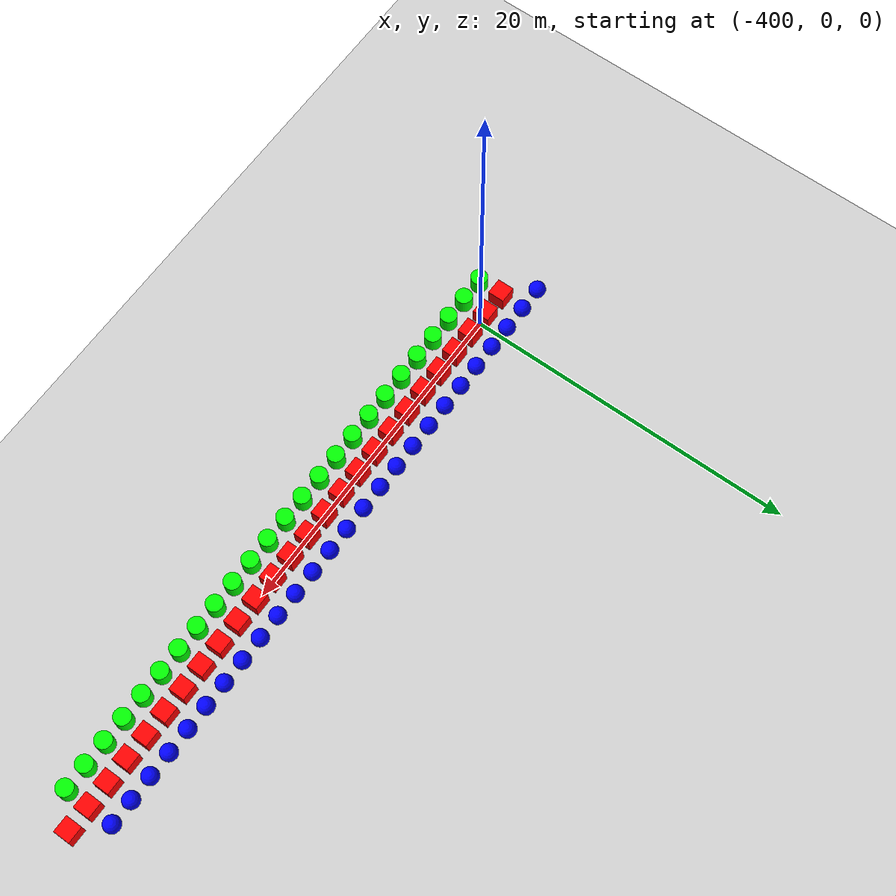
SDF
<sdf version="1.6">
 <world name="shapes">
  <model name="ground_plane">
   <static>true</static>
   <link name="link">
    <collision name="collision">
     <geometry><plane><normal>0 0 1</normal><size>100 100</size></plane></geometry>
    </collision>
    <visual name="visual">
     <geometry><plane><normal>0 0 1</normal><size>100 100</size></plane></geometry>
     <material>
      <ambient>0.8 0.8 0.8 1</ambient>
      <diffuse>0.8 0.8 0.8 1</diffuse>
      <specular>0.8 0.8 0.8 1</specular>
     </material>
    </visual>
   </link>
  </model>
  <model name="sphere_231">
   <static>false</static>
   <pose>-403.5 1.5 0.5 0 0 0</pose>
   <link name="sphere_link">
    <inertial>
     <inertia><ixx>3</ixx><ixy>0</ixy><ixz>0</ixz><iyy>3</iyy><iyz>0</iyz><izz>3</izz></inertia>
     <mass>3.0</mass>
    </inertial>
    <collision name="sphere_collision"><geometry><sphere><radius>0.5</radius></sphere></geometry></collision>
    <visual name="sphere_visual">
     <geometry><sphere><radius>0.5</radius></sphere></geometry>
     <material><ambient>0 0 1 1</ambient><diffuse>0 0 1 1</diffuse><specular>0 0 1 1</specular></material>
    </visual>
   </link>
  </model>
  <model name="box_232">
   <static>false</static>
   <pose>-402.0 0 0.5 0 0 0</pose>
   <link name="box_link">
    <inertial>
     <inertia><ixx>1</ixx><ixy>0</ixy><ixz>0</ixz><iyy>1</iyy><iyz>0</iyz><izz>1</izz></inertia>
     <mass>1.0</mass>
    </inertial>
    <collision name="box_collision"><geometry><box><size>1 1 1</size></box></geometry></collision>
    <visual name="box_visual">
     <geometry><box><size>1 1 1</size></box></geometry>
     <material><ambient>1 0 0 1</ambient><diffuse>1 0 0 1</diffuse><specular>1 0 0 1</specular></material>
    </visual>
   </link>
  </model>
  <model name="cylinder_232">
   <static>false</static>
   <pose>-402.0 -1.5 0.5 0 0 0</pose>
   <link name="cylinder_link">
    <inertial>
     <inertia><ixx>2</ixx><ixy>0</ixy><ixz>0</ixz><iyy>2</iyy><iyz>0</iyz><izz>2</izz></inertia>
     <mass>2.0</mass>
    </inertial>
    <collision name="cylinder_collision">
     <geometry><cylinder><radius>0.5</radius><length>1.0</length></cylinder></geometry>
    </collision>
    <visual name="cylinder_visual">
     <geometry><cylinder><radius>0.5</radius><length>1.0</length></cylinder></geometry>
     <material><ambient>0 1 0 1</ambient><diffuse>0 1 0 1</diffuse><specular>0 1 0 1</specular></material>
    </visual>
   </link>
  </model>
  <model name="sphere_232">
   <static>false</static>
   <pose>-402.0 1.5 0.5 0 0 0</pose>
   <link name="sphere_link">
    <inertial>
     <inertia><ixx>3</ixx><ixy>0</ixy><ixz>0</ixz><iyy>3</iyy><iyz>0</iyz><izz>3</izz></inertia>
     <mass>3.0</mass>
    </inertial>
    <collision name="sphere_collision"><geometry><sphere><radius>0.5</radius></sphere></geometry></collision>
    <visual name="sphere_visual">
     <geometry><sphere><radius>0.5</radius></sphere></geometry>
     <material><ambient>0 0 1 1</ambient><diffuse>0 0 1 1</diffuse><specular>0 0 1 1</specular></material>
    </visual>
   </link>
  </model>
  <model name="box_233">
   <static>false</static>
   <pose>-400.5 0 0.5 0 0 0</pose>
   <link name="box_link">
    <inertial>
     <inertia><ixx>1</ixx><ixy>0</ixy><ixz>0</ixz><iyy>1</iyy><iyz>0</iyz><izz>1</izz></inertia>
     <mass>1.0</mass>
    </inertial>
    <collision name="box_collision"><geometry><box><size>1 1 1</size></box></geometry></collision>
    <visual name="box_visual">
     <geometry><box><size>1 1 1</size></box></geometry>
     <material><ambient>1 0 0 1</ambient><diffuse>1 0 0 1</diffuse><specular>1 0 0 1</specular></material>
    </visual>
   </link>
  </model>
  <model name="cylinder_233">
   <static>false</static>
   <pose>-400.5 -1.5 0.5 0 0 0</pose>
   <link name="cylinder_link">
    <inertial>
     <inertia><ixx>2</ixx><ixy>0</ixy><ixz>0</ixz><iyy>2</iyy><iyz>0</iyz><izz>2</izz></inertia>
     <mass>2.0</mass>
    </inertial>
    <collision name="cylinder_collision">
     <geometry><cylinder><radius>0.5</radius><length>1.0</length></cylinder></geometry>
    </collision>
    <visual name="cylinder_visual">
     <geometry><cylinder><radius>0.5</radius><length>1.0</length></cylinder></geometry>
     <material><ambient>0 1 0 1</ambient><diffuse>0 1 0 1</diffuse><specular>0 1 0 1</specular></material>
    </visual>
   </link>
  </model>
  <model name="sphere_233">
   <static>false</static>
   <pose>-400.5 1.5 0.5 0 0 0</pose>
   <link name="sphere_link">
    <inertial>
     <inertia><ixx>3</ixx><ixy>0</ixy><ixz>0</ixz><iyy>3</iyy><iyz>0</iyz><izz>3</izz></inertia>
     <mass>3.0</mass>
    </inertial>
    <collision name="sphere_collision"><geometry><sphere><radius>0.5</radius></sphere></geometry></collision>
    <visual name="sphere_visual">
     <geometry><sphere><radius>0.5</radius></sphere></geometry>
     <material><ambient>0 0 1 1</ambient><diffuse>0 0 1 1</diffuse><specular>0 0 1 1</specular></material>
    </visual>
   </link>
  </model>
  <model name="box_234">
   <static>false</static>
   <pose>-399.0 0 0.5 0 0 0</pose>
   <link name="box_link">
    <inertial>
     <inertia><ixx>1</ixx><ixy>0</ixy><ixz>0</ixz><iyy>1</iyy><iyz>0</iyz><izz>1</izz></inertia>
     <mass>1.0</mass>
    </inertial>
    <collision name="box_collision"><geometry><box><size>1 1 1</size></box></geometry></collision>
    <visual name="box_visual">
     <geometry><box><size>1 1 1</size></box></geometry>
     <material><ambient>1 0 0 1</ambient><diffuse>1 0 0 1</diffuse><specular>1 0 0 1</specular></material>
    </visual>
   </link>
  </model>
  <model name="cylinder_234">
   <static>false</static>
   <pose>-399.0 -1.5 0.5 0 0 0</pose>
   <link name="cylinder_link">
    <inertial>
     <inertia><ixx>2</ixx><ixy>0</ixy><ixz>0</ixz><iyy>2</iyy><iyz>0</iyz><izz>2</izz></inertia>
     <mass>2.0</mass>
    </inertial>
    <collision name="cylinder_collision">
     <geometry><cylinder><radius>0.5</radius><length>1.0</length></cylinder></geometry>
    </collision>
    <visual name="cylinder_visual">
     <geometry><cylinder><radius>0.5</radius><length>1.0</length></cylinder></geometry>
     <material><ambient>0 1 0 1</ambient><diffuse>0 1 0 1</diffuse><specular>0 1 0 1</specular></material>
    </visual>
   </link>
  </model>
  <model name="sphere_234">
   <static>false</static>
   <pose>-399.0 1.5 0.5 0 0 0</pose>
   <link name="sphere_link">
    <inertial>
     <inertia><ixx>3</ixx><ixy>0</ixy><ixz>0</ixz><iyy>3</iyy><iyz>0</iyz><izz>3</izz></inertia>
     <mass>3.0</mass>
    </inertial>
    <collision name="sphere_collision"><geometry><sphere><radius>0.5</radius></sphere></geometry></collision>
    <visual name="sphere_visual">
     <geometry><sphere><radius>0.5</radius></sphere></geometry>
     <material><ambient>0 0 1 1</ambient><diffuse>0 0 1 1</diffuse><specular>0 0 1 1</specular></material>
    </visual>
   </link>
  </model>
  <model name="box_235">
   <static>false</static>
   <pose>-397.5 0 0.5 0 0 0</pose>
   <link name="box_link">
    <inertial>
     <inertia><ixx>1</ixx><ixy>0</ixy><ixz>0</ixz><iyy>1</iyy><iyz>0</iyz><izz>1</izz></inertia>
     <mass>1.0</mass>
    </inertial>
    <collision name="box_collision"><geometry><box><size>1 1 1</size></box></geometry></collision>
    <visual name="box_visual">
     <geometry><box><size>1 1 1</size></box></geometry>
     <material><ambient>1 0 0 1</ambient><diffuse>1 0 0 1</diffuse><specular>1 0 0 1</specular></material>
    </visual>
   </link>
  </model>
  <model name="cylinder_235">
   <static>false</static>
   <pose>-397.5 -1.5 0.5 0 0 0</pose>
   <link name="cylinder_link">
    <inertial>
     <inertia><ixx>2</ixx><ixy>0</ixy><ixz>0</ixz><iyy>2</iyy><iyz>0</iyz><izz>2</izz></inertia>
     <mass>2.0</mass>
    </inertial>
    <collision name="cylinder_collision">
     <geometry><cylinder><radius>0.5</radius><length>1.0</length></cylinder></geometry>
    </collision>
    <visual name="cylinder_visual">
     <geometry><cylinder><radius>0.5</radius><length>1.0</length></cylinder></geometry>
     <material><ambient>0 1 0 1</ambient><diffuse>0 1 0 1</diffuse><specular>0 1 0 1</specular></material>
    </visual>
   </link>
  </model>
  <model name="sphere_235">
   <static>false</static>
   <pose>-397.5 1.5 0.5 0 0 0</pose>
   <link name="sphere_link">
    <inertial>
     <inertia><ixx>3</ixx><ixy>0</ixy><ixz>0</ixz><iyy>3</iyy><iyz>0</iyz><izz>3</izz></inertia>
     <mass>3.0</mass>
    </inertial>
    <collision name="sphere_collision"><geometry><sphere><radius>0.5</radius></sphere></geometry></collision>
    <visual name="sphere_visual">
     <geometry><sphere><radius>0.5</radius></sphere></geometry>
     <material><ambient>0 0 1 1</ambient><diffuse>0 0 1 1</diffuse><specular>0 0 1 1</specular></material>
    </visual>
   </link>
  </model>
  <model name="box_236">
   <static>false</static>
   <pose>-396.0 0 0.5 0 0 0</pose>
   <link name="box_link">
    <inertial>
     <inertia><ixx>1</ixx><ixy>0</ixy><ixz>0</ixz><iyy>1</iyy><iyz>0</iyz><izz>1</izz></inertia>
     <mass>1.0</mass>
    </inertial>
    <collision name="box_collision"><geometry><box><size>1 1 1</size></box></geometry></collision>
    <visual name="box_visual">
     <geometry><box><size>1 1 1</size></box></geometry>
     <material><ambient>1 0 0 1</ambient><diffuse>1 0 0 1</diffuse><specular>1 0 0 1</specular></material>
    </visual>
   </link>
  </model>
  <model name="cylinder_236">
   <static>false</static>
   <pose>-396.0 -1.5 0.5 0 0 0</pose>
   <link name="cylinder_link">
    <inertial>
     <inertia><ixx>2</ixx><ixy>0</ixy><ixz>0</ixz><iyy>2</iyy><iyz>0</iyz><izz>2</izz></inertia>
     <mass>2.0</mass>
    </inertial>
    <collision name="cylinder_collision">
     <geometry><cylinder><radius>0.5</radius><length>1.0</length></cylinder></geometry>
    </collision>
    <visual name="cylinder_visual">
     <geometry><cylinder><radius>0.5</radius><length>1.0</length></cylinder></geometry>
     <material><ambient>0 1 0 1</ambient><diffuse>0 1 0 1</diffuse><specular>0 1 0 1</specular></material>
    </visual>
   </link>
  </model>
  <model name="sphere_236">
   <static>false</static>
   <pose>-396.0 1.5 0.5 0 0 0</pose>
   <link name="sphere_link">
    <inertial>
     <inertia><ixx>3</ixx><ixy>0</ixy><ixz>0</ixz><iyy>3</iyy><iyz>0</iyz><izz>3</izz></inertia>
     <mass>3.0</mass>
    </inertial>
    <collision name="sphere_collision"><geometry><sphere><radius>0.5</radius></sphere></geometry></collision>
    <visual name="sphere_visual">
     <geometry><sphere><radius>0.5</radius></sphere></geometry>
     <material><ambient>0 0 1 1</ambient><diffuse>0 0 1 1</diffuse><specular>0 0 1 1</specular></material>
    </visual>
   </link>
  </model>
  <model name="box_237">
   <static>false</static>
   <pose>-394.5 0 0.5 0 0 0</pose>
   <link name="box_link">
    <inertial>
     <inertia><ixx>1</ixx><ixy>0</ixy><ixz>0</ixz><iyy>1</iyy><iyz>0</iyz><izz>1</izz></inertia>
     <mass>1.0</mass>
    </inertial>
    <collision name="box_collision"><geometry><box><size>1 1 1</size></box></geometry></collision>
    <visual name="box_visual">
     <geometry><box><size>1 1 1</size></box></geometry>
     <material><ambient>1 0 0 1</ambient><diffuse>1 0 0 1</diffuse><specular>1 0 0 1</specular></material>
    </visual>
   </link>
  </model>
  <model name="cylinder_237">
   <static>false</static>
   <pose>-394.5 -1.5 0.5 0 0 0</pose>
   <link name="cylinder_link">
    <inertial>
     <inertia><ixx>2</ixx><ixy>0</ixy><ixz>0</ixz><iyy>2</iyy><iyz>0</iyz><izz>2</izz></inertia>
     <mass>2.0</mass>
    </inertial>
    <collision name="cylinder_collision">
     <geometry><cylinder><radius>0.5</radius><length>1.0</length></cylinder></geometry>
    </collision>
    <visual name="cylinder_visual">
     <geometry><cylinder><radius>0.5</radius><length>1.0</length></cylinder></geometry>
     <material><ambient>0 1 0 1</ambient><diffuse>0 1 0 1</diffuse><specular>0 1 0 1</specular></material>
    </visual>
   </link>
  </model>
  <model name="sphere_237">
   <static>false</static>
   <pose>-394.5 1.5 0.5 0 0 0</pose>
   <link name="sphere_link">
    <inertial>
     <inertia><ixx>3</ixx><ixy>0</ixy><ixz>0</ixz><iyy>3</iyy><iyz>0</iyz><izz>3</izz></inertia>
     <mass>3.0</mass>
    </inertial>
    <collision name="sphere_collision"><geometry><sphere><radius>0.5</radius></sphere></geometry></collision>
    <visual name="sphere_visual">
     <geometry><sphere><radius>0.5</radius></sphere></geometry>
     <material><ambient>0 0 1 1</ambient><diffuse>0 0 1 1</diffuse><specular>0 0 1 1</specular></material>
    </visual>
   </link>
  </model>
  <model name="box_238">
   <static>false</static>
   <pose>-393.0 0 0.5 0 0 0</pose>
   <link name="box_link">
    <inertial>
     <inertia><ixx>1</ixx><ixy>0</ixy><ixz>0</ixz><iyy>1</iyy><iyz>0</iyz><izz>1</izz></inertia>
     <mass>1.0</mass>
    </inertial>
    <collision name="box_collision"><geometry><box><size>1 1 1</size></box></geometry></collision>
    <visual name="box_visual">
     <geometry><box><size>1 1 1</size></box></geometry>
     <material><ambient>1 0 0 1</ambient><diffuse>1 0 0 1</diffuse><specular>1 0 0 1</specular></material>
    </visual>
   </link>
  </model>
  <model name="cylinder_238">
   <static>false</static>
   <pose>-393.0 -1.5 0.5 0 0 0</pose>
   <link name="cylinder_link">
    <inertial>
     <inertia><ixx>2</ixx><ixy>0</ixy><ixz>0</ixz><iyy>2</iyy><iyz>0</iyz><izz>2</izz></inertia>
     <mass>2.0</mass>
    </inertial>
    <collision name="cylinder_collision">
     <geometry><cylinder><radius>0.5</radius><length>1.0</length></cylinder></geometry>
    </collision>
    <visual name="cylinder_visual">
     <geometry><cylinder><radius>0.5</radius><length>1.0</length></cylinder></geometry>
     <material><ambient>0 1 0 1</ambient><diffuse>0 1 0 1</diffuse><specular>0 1 0 1</specular></material>
    </visual>
   </link>
  </model>
  <model name="sphere_238">
   <static>false</static>
   <pose>-393.0 1.5 0.5 0 0 0</pose>
   <link name="sphere_link">
    <inertial>
     <inertia><ixx>3</ixx><ixy>0</ixy><ixz>0</ixz><iyy>3</iyy><iyz>0</iyz><izz>3</izz></inertia>
     <mass>3.0</mass>
    </inertial>
    <collision name="sphere_collision"><geometry><sphere><radius>0.5</radius></sphere></geometry></collision>
    <visual name="sphere_visual">
     <geometry><sphere><radius>0.5</radius></sphere></geometry>
     <material><ambient>0 0 1 1</ambient><diffuse>0 0 1 1</diffuse><specular>0 0 1 1</specular></material>
    </visual>
   </link>
  </model>
  <model name="box_239">
   <static>false</static>
   <pose>-391.5 0 0.5 0 0 0</pose>
   <link name="box_link">
    <inertial>
     <inertia><ixx>1</ixx><ixy>0</ixy><ixz>0</ixz><iyy>1</iyy><iyz>0</iyz><izz>1</izz></inertia>
     <mass>1.0</mass>
    </inertial>
    <collision name="box_collision"><geometry><box><size>1 1 1</size></box></geometry></collision>
    <visual name="box_visual">
     <geometry><box><size>1 1 1</size></box></geometry>
     <material><ambient>1 0 0 1</ambient><diffuse>1 0 0 1</diffuse><specular>1 0 0 1</specular></material>
    </visual>
   </link>
  </model>
  <model name="cylinder_239">
   <static>false</static>
   <pose>-391.5 -1.5 0.5 0 0 0</pose>
   <link name="cylinder_link">
    <inertial>
     <inertia><ixx>2</ixx><ixy>0</ixy><ixz>0</ixz><iyy>2</iyy><iyz>0</iyz><izz>2</izz></inertia>
     <mass>2.0</mass>
    </inertial>
    <collision name="cylinder_collision">
     <geometry><cylinder><radius>0.5</radius><length>1.0</length></cylinder></geometry>
    </collision>
    <visual name="cylinder_visual">
     <geometry><cylinder><radius>0.5</radius><length>1.0</length></cylinder></geometry>
     <material><ambient>0 1 0 1</ambient><diffuse>0 1 0 1</diffuse><specular>0 1 0 1</specular></material>
    </visual>
   </link>
  </model>
  <model name="sphere_239">
   <static>false</static>
   <pose>-391.5 1.5 0.5 0 0 0</pose>
   <link name="sphere_link">
    <inertial>
     <inertia><ixx>3</ixx><ixy>0</ixy><ixz>0</ixz><iyy>3</iyy><iyz>0</iyz><izz>3</izz></inertia>
     <mass>3.0</mass>
    </inertial>
    <collision name="sphere_collision"><geometry><sphere><radius>0.5</radius></sphere></geometry></collision>
    <visual name="sphere_visual">
     <geometry><sphere><radius>0.5</radius></sphere></geometry>
     <material><ambient>0 0 1 1</ambient><diffuse>0 0 1 1</diffuse><specular>0 0 1 1</specular></material>
    </visual>
   </link>
  </model>
  <model name="box_240">
   <static>false</static>
   <pose>-390.0 0 0.5 0 0 0</pose>
   <link name="box_link">
    <inertial>
     <inertia><ixx>1</ixx><ixy>0</ixy><ixz>0</ixz><iyy>1</iyy><iyz>0</iyz><izz>1</izz></inertia>
     <mass>1.0</mass>
    </inertial>
    <collision name="box_collision"><geometry><box><size>1 1 1</size></box></geometry></collision>
    <visual name="box_visual">
     <geometry><box><size>1 1 1</size></box></geometry>
     <material><ambient>1 0 0 1</ambient><diffuse>1 0 0 1</diffuse><specular>1 0 0 1</specular></material>
    </visual>
   </link>
  </model>
  <model name="cylinder_240">
   <static>false</static>
   <pose>-390.0 -1.5 0.5 0 0 0</pose>
   <link name="cylinder_link">
    <inertial>
     <inertia><ixx>2</ixx><ixy>0</ixy><ixz>0</ixz><iyy>2</iyy><iyz>0</iyz><izz>2</izz></inertia>
     <mass>2.0</mass>
    </inertial>
    <collision name="cylinder_collision">
     <geometry><cylinder><radius>0.5</radius><length>1.0</length></cylinder></geometry>
    </collision>
    <visual name="cylinder_visual">
     <geometry><cylinder><radius>0.5</radius><length>1.0</length></cylinder></geometry>
     <material><ambient>0 1 0 1</ambient><diffuse>0 1 0 1</diffuse><specular>0 1 0 1</specular></material>
    </visual>
   </link>
  </model>
  <model name="sphere_240">
   <static>false</static>
   <pose>-390.0 1.5 0.5 0 0 0</pose>
   <link name="sphere_link">
    <inertial>
     <inertia><ixx>3</ixx><ixy>0</ixy><ixz>0</ixz><iyy>3</iyy><iyz>0</iyz><izz>3</izz></inertia>
     <mass>3.0</mass>
    </inertial>
    <collision name="sphere_collision"><geometry><sphere><radius>0.5</radius></sphere></geometry></collision>
    <visual name="sphere_visual">
     <geometry><sphere><radius>0.5</radius></sphere></geometry>
     <material><ambient>0 0 1 1</ambient><diffuse>0 0 1 1</diffuse><specular>0 0 1 1</specular></material>
    </visual>
   </link>
  </model>
  <model name="box_241">
   <static>false</static>
   <pose>-388.5 0 0.5 0 0 0</pose>
   <link name="box_link">
    <inertial>
     <inertia><ixx>1</ixx><ixy>0</ixy><ixz>0</ixz><iyy>1</iyy><iyz>0</iyz><izz>1</izz></inertia>
     <mass>1.0</mass>
    </inertial>
    <collision name="box_collision"><geometry><box><size>1 1 1</size></box></geometry></collision>
    <visual name="box_visual">
     <geometry><box><size>1 1 1</size></box></geometry>
     <material><ambient>1 0 0 1</ambient><diffuse>1 0 0 1</diffuse><specular>1 0 0 1</specular></material>
    </visual>
   </link>
  </model>
  <model name="cylinder_241">
   <static>false</static>
   <pose>-388.5 -1.5 0.5 0 0 0</pose>
   <link name="cylinder_link">
    <inertial>
     <inertia><ixx>2</ixx><ixy>0</ixy><ixz>0</ixz><iyy>2</iyy><iyz>0</iyz><izz>2</izz></inertia>
     <mass>2.0</mass>
    </inertial>
    <collision name="cylinder_collision">
     <geometry><cylinder><radius>0.5</radius><length>1.0</length></cylinder></geometry>
    </collision>
    <visual name="cylinder_visual">
     <geometry><cylinder><radius>0.5</radius><length>1.0</length></cylinder></geometry>
     <material><ambient>0 1 0 1</ambient><diffuse>0 1 0 1</diffuse><specular>0 1 0 1</specular></material>
    </visual>
   </link>
  </model>
  <model name="sphere_241">
   <static>false</static>
   <pose>-388.5 1.5 0.5 0 0 0</pose>
   <link name="sphere_link">
    <inertial>
     <inertia><ixx>3</ixx><ixy>0</ixy><ixz>0</ixz><iyy>3</iyy><iyz>0</iyz><izz>3</izz></inertia>
     <mass>3.0</mass>
    </inertial>
    <collision name="sphere_collision"><geometry><sphere><radius>0.5</radius></sphere></geometry></collision>
    <visual name="sphere_visual">
     <geometry><sphere><radius>0.5</radius></sphere></geometry>
     <material><ambient>0 0 1 1</ambient><diffuse>0 0 1 1</diffuse><specular>0 0 1 1</specular></material>
    </visual>
   </link>
  </model>
  <model name="box_242">
   <static>false</static>
   <pose>-387.0 0 0.5 0 0 0</pose>
   <link name="box_link">
    <inertial>
     <inertia><ixx>1</ixx><ixy>0</ixy><ixz>0</ixz><iyy>1</iyy><iyz>0</iyz><izz>1</izz></inertia>
     <mass>1.0</mass>
    </inertial>
    <collision name="box_collision"><geometry><box><size>1 1 1</size></box></geometry></collision>
    <visual name="box_visual">
     <geometry><box><size>1 1 1</size></box></geometry>
     <material><ambient>1 0 0 1</ambient><diffuse>1 0 0 1</diffuse><specular>1 0 0 1</specular></material>
    </visual>
   </link>
  </model>
  <model name="cylinder_242">
   <static>false</static>
   <pose>-387.0 -1.5 0.5 0 0 0</pose>
   <link name="cylinder_link">
    <inertial>
     <inertia><ixx>2</ixx><ixy>0</ixy><ixz>0</ixz><iyy>2</iyy><iyz>0</iyz><izz>2</izz></inertia>
     <mass>2.0</mass>
    </inertial>
    <collision name="cylinder_collision">
     <geometry><cylinder><radius>0.5</radius><length>1.0</length></cylinder></geometry>
    </collision>
    <visual name="cylinder_visual">
     <geometry><cylinder><radius>0.5</radius><length>1.0</length></cylinder></geometry>
     <material><ambient>0 1 0 1</ambient><diffuse>0 1 0 1</diffuse><specular>0 1 0 1</specular></material>
    </visual>
   </link>
  </model>
  <model name="sphere_242">
   <static>false</static>
   <pose>-387.0 1.5 0.5 0 0 0</pose>
   <link name="sphere_link">
    <inertial>
     <inertia><ixx>3</ixx><ixy>0</ixy><ixz>0</ixz><iyy>3</iyy><iyz>0</iyz><izz>3</izz></inertia>
     <mass>3.0</mass>
    </inertial>
    <collision name="sphere_collision"><geometry><sphere><radius>0.5</radius></sphere></geometry></collision>
    <visual name="sphere_visual">
     <geometry><sphere><radius>0.5</radius></sphere></geometry>
     <material><ambient>0 0 1 1</ambient><diffuse>0 0 1 1</diffuse><specular>0 0 1 1</specular></material>
    </visual>
   </link>
  </model>
  <model name="box_243">
   <static>false</static>
   <pose>-385.5 0 0.5 0 0 0</pose>
   <link name="box_link">
    <inertial>
     <inertia><ixx>1</ixx><ixy>0</ixy><ixz>0</ixz><iyy>1</iyy><iyz>0</iyz><izz>1</izz></inertia>
     <mass>1.0</mass>
    </inertial>
    <collision name="box_collision"><geometry><box><size>1 1 1</size></box></geometry></collision>
    <visual name="box_visual">
     <geometry><box><size>1 1 1</size></box></geometry>
     <material><ambient>1 0 0 1</ambient><diffuse>1 0 0 1</diffuse><specular>1 0 0 1</specular></material>
    </visual>
   </link>
  </model>
  <model name="cylinder_243">
   <static>false</static>
   <pose>-385.5 -1.5 0.5 0 0 0</pose>
   <link name="cylinder_link">
    <inertial>
     <inertia><ixx>2</ixx><ixy>0</ixy><ixz>0</ixz><iyy>2</iyy><iyz>0</iyz><izz>2</izz></inertia>
     <mass>2.0</mass>
    </inertial>
    <collision name="cylinder_collision">
     <geometry><cylinder><radius>0.5</radius><length>1.0</length></cylinder></geometry>
    </collision>
    <visual name="cylinder_visual">
     <geometry><cylinder><radius>0.5</radius><length>1.0</length></cylinder></geometry>
     <material><ambient>0 1 0 1</ambient><diffuse>0 1 0 1</diffuse><specular>0 1 0 1</specular></material>
    </visual>
   </link>
  </model>
  <model name="sphere_243">
   <static>false</static>
   <pose>-385.5 1.5 0.5 0 0 0</pose>
   <link name="sphere_link">
    <inertial>
     <inertia><ixx>3</ixx><ixy>0</ixy><ixz>0</ixz><iyy>3</iyy><iyz>0</iyz><izz>3</izz></inertia>
     <mass>3.0</mass>
    </inertial>
    <collision name="sphere_collision"><geometry><sphere><radius>0.5</radius></sphere></geometry></collision>
    <visual name="sphere_visual">
     <geometry><sphere><radius>0.5</radius></sphere></geometry>
     <material><ambient>0 0 1 1</ambient><diffuse>0 0 1 1</diffuse><specular>0 0 1 1</specular></material>
    </visual>
   </link>
  </model>
  <model name="box_244">
   <static>false</static>
   <pose>-384.0 0 0.5 0 0 0</pose>
   <link name="box_link">
    <inertial>
     <inertia><ixx>1</ixx><ixy>0</ixy><ixz>0</ixz><iyy>1</iyy><iyz>0</iyz><izz>1</izz></inertia>
     <mass>1.0</mass>
    </inertial>
    <collision name="box_collision"><geometry><box><size>1 1 1</size></box></geometry></collision>
    <visual name="box_visual">
     <geometry><box><size>1 1 1</size></box></geometry>
     <material><ambient>1 0 0 1</ambient><diffuse>1 0 0 1</diffuse><specular>1 0 0 1</specular></material>
    </visual>
   </link>
  </model>
  <model name="cylinder_244">
   <static>false</static>
   <pose>-384.0 -1.5 0.5 0 0 0</pose>
   <link name="cylinder_link">
    <inertial>
     <inertia><ixx>2</ixx><ixy>0</ixy><ixz>0</ixz><iyy>2</iyy><iyz>0</iyz><izz>2</izz></inertia>
     <mass>2.0</mass>
    </inertial>
    <collision name="cylinder_collision">
     <geometry><cylinder><radius>0.5</radius><length>1.0</length></cylinder></geometry>
    </collision>
    <visual name="cylinder_visual">
     <geometry><cylinder><radius>0.5</radius><length>1.0</length></cylinder></geometry>
     <material><ambient>0 1 0 1</ambient><diffuse>0 1 0 1</diffuse><specular>0 1 0 1</specular></material>
    </visual>
   </link>
  </model>
  <model name="sphere_244">
   <static>false</static>
   <pose>-384.0 1.5 0.5 0 0 0</pose>
   <link name="sphere_link">
    <inertial>
     <inertia><ixx>3</ixx><ixy>0</ixy><ixz>0</ixz><iyy>3</iyy><iyz>0</iyz><izz>3</izz></inertia>
     <mass>3.0</mass>
    </inertial>
    <collision name="sphere_collision"><geometry><sphere><radius>0.5</radius></sphere></geometry></collision>
    <visual name="sphere_visual">
     <geometry><sphere><radius>0.5</radius></sphere></geometry>
     <material><ambient>0 0 1 1</ambient><diffuse>0 0 1 1</diffuse><specular>0 0 1 1</specular></material>
    </visual>
   </link>
  </model>
  <model name="box_245">
   <static>false</static>
   <pose>-382.5 0 0.5 0 0 0</pose>
   <link name="box_link">
    <inertial>
     <inertia><ixx>1</ixx><ixy>0</ixy><ixz>0</ixz><iyy>1</iyy><iyz>0</iyz><izz>1</izz></inertia>
     <mass>1.0</mass>
    </inertial>
    <collision name="box_collision"><geometry><box><size>1 1 1</size></box></geometry></collision>
    <visual name="box_visual">
     <geometry><box><size>1 1 1</size></box></geometry>
     <material><ambient>1 0 0 1</ambient><diffuse>1 0 0 1</diffuse><specular>1 0 0 1</specular></material>
    </visual>
   </link>
  </model>
  <model name="cylinder_245">
   <static>false</static>
   <pose>-382.5 -1.5 0.5 0 0 0</pose>
   <link name="cylinder_link">
    <inertial>
     <inertia><ixx>2</ixx><ixy>0</ixy><ixz>0</ixz><iyy>2</iyy><iyz>0</iyz><izz>2</izz></inertia>
     <mass>2.0</mass>
    </inertial>
    <collision name="cylinder_collision">
     <geometry><cylinder><radius>0.5</radius><length>1.0</length></cylinder></geometry>
    </collision>
    <visual name="cylinder_visual">
     <geometry><cylinder><radius>0.5</radius><length>1.0</length></cylinder></geometry>
     <material><ambient>0 1 0 1</ambient><diffuse>0 1 0 1</diffuse><specular>0 1 0 1</specular></material>
    </visual>
   </link>
  </model>
  <model name="sphere_245">
   <static>false</static>
   <pose>-382.5 1.5 0.5 0 0 0</pose>
   <link name="sphere_link">
    <inertial>
     <inertia><ixx>3</ixx><ixy>0</ixy><ixz>0</ixz><iyy>3</iyy><iyz>0</iyz><izz>3</izz></inertia>
     <mass>3.0</mass>
    </inertial>
    <collision name="sphere_collision"><geometry><sphere><radius>0.5</radius></sphere></geometry></collision>
    <visual name="sphere_visual">
     <geometry><sphere><radius>0.5</radius></sphere></geometry>
     <material><ambient>0 0 1 1</ambient><diffuse>0 0 1 1</diffuse><specular>0 0 1 1</specular></material>
    </visual>
   </link>
  </model>
  <model name="box_246">
   <static>false</static>
   <pose>-381.0 0 0.5 0 0 0</pose>
   <link name="box_link">
    <inertial>
     <inertia><ixx>1</ixx><ixy>0</ixy><ixz>0</ixz><iyy>1</iyy><iyz>0</iyz><izz>1</izz></inertia>
     <mass>1.0</mass>
    </inertial>
    <collision name="box_collision"><geometry><box><size>1 1 1</size></box></geometry></collision>
    <visual name="box_visual">
     <geometry><box><size>1 1 1</size></box></geometry>
     <material><ambient>1 0 0 1</ambient><diffuse>1 0 0 1</diffuse><specular>1 0 0 1</specular></material>
    </visual>
   </link>
  </model>
  <model name="cylinder_246">
   <static>false</static>
   <pose>-381.0 -1.5 0.5 0 0 0</pose>
   <link name="cylinder_link">
    <inertial>
     <inertia><ixx>2</ixx><ixy>0</ixy><ixz>0</ixz><iyy>2</iyy><iyz>0</iyz><izz>2</izz></inertia>
     <mass>2.0</mass>
    </inertial>
    <collision name="cylinder_collision">
     <geometry><cylinder><radius>0.5</radius><length>1.0</length></cylinder></geometry>
    </collision>
    <visual name="cylinder_visual">
     <geometry><cylinder><radius>0.5</radius><length>1.0</length></cylinder></geometry>
     <material><ambient>0 1 0 1</ambient><diffuse>0 1 0 1</diffuse><specular>0 1 0 1</specular></material>
    </visual>
   </link>
  </model>
  <model name="sphere_246">
   <static>false</static>
   <pose>-381.0 1.5 0.5 0 0 0</pose>
   <link name="sphere_link">
    <inertial>
     <inertia><ixx>3</ixx><ixy>0</ixy><ixz>0</ixz><iyy>3</iyy><iyz>0</iyz><izz>3</izz></inertia>
     <mass>3.0</mass>
    </inertial>
    <collision name="sphere_collision"><geometry><sphere><radius>0.5</radius></sphere></geometry></collision>
    <visual name="sphere_visual">
     <geometry><sphere><radius>0.5</radius></sphere></geometry>
     <material><ambient>0 0 1 1</ambient><diffuse>0 0 1 1</diffuse><specular>0 0 1 1</specular></material>
    </visual>
   </link>
  </model>
  <model name="box_247">
   <static>false</static>
   <pose>-379.5 0 0.5 0 0 0</pose>
   <link name="box_link">
    <inertial>
     <inertia><ixx>1</ixx><ixy>0</ixy><ixz>0</ixz><iyy>1</iyy><iyz>0</iyz><izz>1</izz></inertia>
     <mass>1.0</mass>
    </inertial>
    <collision name="box_collision"><geometry><box><size>1 1 1</size></box></geometry></collision>
    <visual name="box_visual">
     <geometry><box><size>1 1 1</size></box></geometry>
     <material><ambient>1 0 0 1</ambient><diffuse>1 0 0 1</diffuse><specular>1 0 0 1</specular></material>
    </visual>
   </link>
  </model>
  <model name="cylinder_247">
   <static>false</static>
   <pose>-379.5 -1.5 0.5 0 0 0</pose>
   <link name="cylinder_link">
    <inertial>
     <inertia><ixx>2</ixx><ixy>0</ixy><ixz>0</ixz><iyy>2</iyy><iyz>0</iyz><izz>2</izz></inertia>
     <mass>2.0</mass>
    </inertial>
    <collision name="cylinder_collision">
     <geometry><cylinder><radius>0.5</radius><length>1.0</length></cylinder></geometry>
    </collision>
    <visual name="cylinder_visual">
     <geometry><cylinder><radius>0.5</radius><length>1.0</length></cylinder></geometry>
     <material><ambient>0 1 0 1</ambient><diffuse>0 1 0 1</diffuse><specular>0 1 0 1</specular></material>
    </visual>
   </link>
  </model>
  <model name="sphere_247">
   <static>false</static>
   <pose>-379.5 1.5 0.5 0 0 0</pose>
   <link name="sphere_link">
    <inertial>
     <inertia><ixx>3</ixx><ixy>0</ixy><ixz>0</ixz><iyy>3</iyy><iyz>0</iyz><izz>3</izz></inertia>
     <mass>3.0</mass>
    </inertial>
    <collision name="sphere_collision"><geometry><sphere><radius>0.5</radius></sphere></geometry></collision>
    <visual name="sphere_visual">
     <geometry><sphere><radius>0.5</radius></sphere></geometry>
     <material><ambient>0 0 1 1</ambient><diffuse>0 0 1 1</diffuse><specular>0 0 1 1</specular></material>
    </visual>
   </link>
  </model>
  <model name="box_248">
   <static>false</static>
   <pose>-378.0 0 0.5 0 0 0</pose>
   <link name="box_link">
    <inertial>
     <inertia><ixx>1</ixx><ixy>0</ixy><ixz>0</ixz><iyy>1</iyy><iyz>0</iyz><izz>1</izz></inertia>
     <mass>1.0</mass>
    </inertial>
    <collision name="box_collision"><geometry><box><size>1 1 1</size></box></geometry></collision>
    <visual name="box_visual">
     <geometry><box><size>1 1 1</size></box></geometry>
     <material><ambient>1 0 0 1</ambient><diffuse>1 0 0 1</diffuse><specular>1 0 0 1</specular></material>
    </visual>
   </link>
  </model>
  <model name="cylinder_248">
   <static>false</static>
   <pose>-378.0 -1.5 0.5 0 0 0</pose>
   <link name="cylinder_link">
    <inertial>
     <inertia><ixx>2</ixx><ixy>0</ixy><ixz>0</ixz><iyy>2</iyy><iyz>0</iyz><izz>2</izz></inertia>
     <mass>2.0</mass>
    </inertial>
    <collision name="cylinder_collision">
     <geometry><cylinder><radius>0.5</radius><length>1.0</length></cylinder></geometry>
    </collision>
    <visual name="cylinder_visual">
     <geometry><cylinder><radius>0.5</radius><length>1.0</length></cylinder></geometry>
     <material><ambient>0 1 0 1</ambient><diffuse>0 1 0 1</diffuse><specular>0 1 0 1</specular></material>
    </visual>
   </link>
  </model>
  <model name="sphere_248">
   <static>false</static>
   <pose>-378.0 1.5 0.5 0 0 0</pose>
   <link name="sphere_link">
    <inertial>
     <inertia><ixx>3</ixx><ixy>0</ixy><ixz>0</ixz><iyy>3</iyy><iyz>0</iyz><izz>3</izz></inertia>
     <mass>3.0</mass>
    </inertial>
    <collision name="sphere_collision"><geometry><sphere><radius>0.5</radius></sphere></geometry></collision>
    <visual name="sphere_visual">
     <geometry><sphere><radius>0.5</radius></sphere></geometry>
     <material><ambient>0 0 1 1</ambient><diffuse>0 0 1 1</diffuse><specular>0 0 1 1</specular></material>
    </visual>
   </link>
  </model>
  <model name="box_249">
   <static>false</static>
   <pose>-376.5 0 0.5 0 0 0</pose>
   <link name="box_link">
    <inertial>
     <inertia><ixx>1</ixx><ixy>0</ixy><ixz>0</ixz><iyy>1</iyy><iyz>0</iyz><izz>1</izz></inertia>
     <mass>1.0</mass>
    </inertial>
    <collision name="box_collision"><geometry><box><size>1 1 1</size></box></geometry></collision>
    <visual name="box_visual">
     <geometry><box><size>1 1 1</size></box></geometry>
     <material><ambient>1 0 0 1</ambient><diffuse>1 0 0 1</diffuse><specular>1 0 0 1</specular></material>
    </visual>
   </link>
  </model>
  <model name="cylinder_249">
   <static>false</static>
   <pose>-376.5 -1.5 0.5 0 0 0</pose>
   <link name="cylinder_link">
    <inertial>
     <inertia><ixx>2</ixx><ixy>0</ixy><ixz>0</ixz><iyy>2</iyy><iyz>0</iyz><izz>2</izz></inertia>
     <mass>2.0</mass>
    </inertial>
    <collision name="cylinder_collision">
     <geometry><cylinder><radius>0.5</radius><length>1.0</length></cylinder></geometry>
    </collision>
    <visual name="cylinder_visual">
     <geometry><cylinder><radius>0.5</radius><length>1.0</length></cylinder></geometry>
     <material><ambient>0 1 0 1</ambient><diffuse>0 1 0 1</diffuse><specular>0 1 0 1</specular></material>
    </visual>
   </link>
  </model>
  <model name="sphere_249">
   <static>false</static>
   <pose>-376.5 1.5 0.5 0 0 0</pose>
   <link name="sphere_link">
    <inertial>
     <inertia><ixx>3</ixx><ixy>0</ixy><ixz>0</ixz><iyy>3</iyy><iyz>0</iyz><izz>3</izz></inertia>
     <mass>3.0</mass>
    </inertial>
    <collision name="sphere_collision"><geometry><sphere><radius>0.5</radius></sphere></geometry></collision>
    <visual name="sphere_visual">
     <geometry><sphere><radius>0.5</radius></sphere></geometry>
     <material><ambient>0 0 1 1</ambient><diffuse>0 0 1 1</diffuse><specular>0 0 1 1</specular></material>
    </visual>
   </link>
  </model>
  <model name="box_250">
   <static>false</static>
   <pose>-375.0 0 0.5 0 0 0</pose>
   <link name="box_link">
    <inertial>
     <inertia><ixx>1</ixx><ixy>0</ixy><ixz>0</ixz><iyy>1</iyy><iyz>0</iyz><izz>1</izz></inertia>
     <mass>1.0</mass>
    </inertial>
    <collision name="box_collision"><geometry><box><size>1 1 1</size></box></geometry></collision>
    <visual name="box_visual">
     <geometry><box><size>1 1 1</size></box></geometry>
     <material><ambient>1 0 0 1</ambient><diffuse>1 0 0 1</diffuse><specular>1 0 0 1</specular></material>
    </visual>
   </link>
  </model>
  <model name="cylinder_250">
   <static>false</static>
   <pose>-375.0 -1.5 0.5 0 0 0</pose>
   <link name="cylinder_link">
    <inertial>
     <inertia><ixx>2</ixx><ixy>0</ixy><ixz>0</ixz><iyy>2</iyy><iyz>0</iyz><izz>2</izz></inertia>
     <mass>2.0</mass>
    </inertial>
    <collision name="cylinder_collision">
     <geometry><cylinder><radius>0.5</radius><length>1.0</length></cylinder></geometry>
    </collision>
    <visual name="cylinder_visual">
     <geometry><cylinder><radius>0.5</radius><length>1.0</length></cylinder></geometry>
     <material><ambient>0 1 0 1</ambient><diffuse>0 1 0 1</diffuse><specular>0 1 0 1</specular></material>
    </visual>
   </link>
  </model>
  <model name="sphere_250">
   <static>false</static>
   <pose>-375.0 1.5 0.5 0 0 0</pose>
   <link name="sphere_link">
    <inertial>
     <inertia><ixx>3</ixx><ixy>0</ixy><ixz>0</ixz><iyy>3</iyy><iyz>0</iyz><izz>3</izz></inertia>
     <mass>3.0</mass>
    </inertial>
    <collision name="sphere_collision"><geometry><sphere><radius>0.5</radius></sphere></geometry></collision>
    <visual name="sphere_visual">
     <geometry><sphere><radius>0.5</radius></sphere></geometry>
     <material><ambient>0 0 1 1</ambient><diffuse>0 0 1 1</diffuse><specular>0 0 1 1</specular></material>
    </visual>
   </link>
  </model>
  <model name="box_251">
   <static>false</static>
   <pose>-373.5 0 0.5 0 0 0</pose>
   <link name="box_link">
    <inertial>
     <inertia><ixx>1</ixx><ixy>0</ixy><ixz>0</ixz><iyy>1</iyy><iyz>0</iyz><izz>1</izz></inertia>
     <mass>1.0</mass>
    </inertial>
    <collision name="box_collision"><geometry><box><size>1 1 1</size></box></geometry></collision>
    <visual name="box_visual">
     <geometry><box><size>1 1 1</size></box></geometry>
     <material><ambient>1 0 0 1</ambient><diffuse>1 0 0 1</diffuse><specular>1 0 0 1</specular></material>
    </visual>
   </link>
  </model>
  <model name="cylinder_251">
   <static>false</static>
   <pose>-373.5 -1.5 0.5 0 0 0</pose>
   <link name="cylinder_link">
    <inertial>
     <inertia><ixx>2</ixx><ixy>0</ixy><ixz>0</ixz><iyy>2</iyy><iyz>0</iyz><izz>2</izz></inertia>
     <mass>2.0</mass>
    </inertial>
    <collision name="cylinder_collision">
     <geometry><cylinder><radius>0.5</radius><length>1.0</length></cylinder></geometry>
    </collision>
    <visual name="cylinder_visual">
     <geometry><cylinder><radius>0.5</radius><length>1.0</length></cylinder></geometry>
     <material><ambient>0 1 0 1</ambient><diffuse>0 1 0 1</diffuse><specular>0 1 0 1</specular></material>
    </visual>
   </link>
  </model>
  <model name="sphere_251">
   <static>false</static>
   <pose>-373.5 1.5 0.5 0 0 0</pose>
   <link name="sphere_link">
    <inertial>
     <inertia><ixx>3</ixx><ixy>0</ixy><ixz>0</ixz><iyy>3</iyy><iyz>0</iyz><izz>3</izz></inertia>
     <mass>3.0</mass>
    </inertial>
    <collision name="sphere_collision"><geometry><sphere><radius>0.5</radius></sphere></geometry></collision>
    <visual name="sphere_visual">
     <geometry><sphere><radius>0.5</radius></sphere></geometry>
     <material><ambient>0 0 1 1</ambient><diffuse>0 0 1 1</diffuse><specular>0 0 1 1</specular></material>
    </visual>
   </link>
  </model>
  <model name="box_252">
   <static>false</static>
   <pose>-372.0 0 0.5 0 0 0</pose>
   <link name="box_link">
    <inertial>
     <inertia><ixx>1</ixx><ixy>0</ixy><ixz>0</ixz><iyy>1</iyy><iyz>0</iyz><izz>1</izz></inertia>
     <mass>1.0</mass>
    </inertial>
    <collision name="box_collision"><geometry><box><size>1 1 1</size></box></geometry></collision>
    <visual name="box_visual">
     <geometry><box><size>1 1 1</size></box></geometry>
     <material><ambient>1 0 0 1</ambient><diffuse>1 0 0 1</diffuse><specular>1 0 0 1</specular></material>
    </visual>
   </link>
  </model>
  <model name="cylinder_252">
   <static>false</static>
   <pose>-372.0 -1.5 0.5 0 0 0</pose>
   <link name="cylinder_link">
    <inertial>
     <inertia><ixx>2</ixx><ixy>0</ixy><ixz>0</ixz><iyy>2</iyy><iyz>0</iyz><izz>2</izz></inertia>
     <mass>2.0</mass>
    </inertial>
    <collision name="cylinder_collision">
     <geometry><cylinder><radius>0.5</radius><length>1.0</length></cylinder></geometry>
    </collision>
    <visual name="cylinder_visual">
     <geometry><cylinder><radius>0.5</radius><length>1.0</length></cylinder></geometry>
     <material><ambient>0 1 0 1</ambient><diffuse>0 1 0 1</diffuse><specular>0 1 0 1</specular></material>
    </visual>
   </link>
  </model>
  <model name="sphere_252">
   <static>false</static>
   <pose>-372.0 1.5 0.5 0 0 0</pose>
   <link name="sphere_link">
    <inertial>
     <inertia><ixx>3</ixx><ixy>0</ixy><ixz>0</ixz><iyy>3</iyy><iyz>0</iyz><izz>3</izz></inertia>
     <mass>3.0</mass>
    </inertial>
    <collision name="sphere_collision"><geometry><sphere><radius>0.5</radius></sphere></geometry></collision>
    <visual name="sphere_visual">
     <geometry><sphere><radius>0.5</radius></sphere></geometry>
     <material><ambient>0 0 1 1</ambient><diffuse>0 0 1 1</diffuse><specular>0 0 1 1</specular></material>
    </visual>
   </link>
  </model>
  <model name="box_253">
   <static>false</static>
   <pose>-370.5 0 0.5 0 0 0</pose>
   <link name="box_link">
    <inertial>
     <inertia><ixx>1</ixx><ixy>0</ixy><ixz>0</ixz><iyy>1</iyy><iyz>0</iyz><izz>1</izz></inertia>
     <mass>1.0</mass>
    </inertial>
    <collision name="box_collision"><geometry><box><size>1 1 1</size></box></geometry></collision>
    <visual name="box_visual">
     <geometry><box><size>1 1 1</size></box></geometry>
     <material><ambient>1 0 0 1</ambient><diffuse>1 0 0 1</diffuse><specular>1 0 0 1</specular></material>
    </visual>
   </link>
  </model>
  <model name="cylinder_253">
   <static>false</static>
   <pose>-370.5 -1.5 0.5 0 0 0</pose>
   <link name="cylinder_link">
    <inertial>
     <inertia><ixx>2</ixx><ixy>0</ixy><ixz>0</ixz><iyy>2</iyy><iyz>0</iyz><izz>2</izz></inertia>
     <mass>2.0</mass>
    </inertial>
    <collision name="cylinder_collision">
     <geometry><cylinder><radius>0.5</radius><length>1.0</length></cylinder></geometry>
    </collision>
    <visual name="cylinder_visual">
     <geometry><cylinder><radius>0.5</radius><length>1.0</length></cylinder></geometry>
     <material><ambient>0 1 0 1</ambient><diffuse>0 1 0 1</diffuse><specular>0 1 0 1</specular></material>
    </visual>
   </link>
  </model>
  <model name="sphere_253">
   <static>false</static>
   <pose>-370.5 1.5 0.5 0 0 0</pose>
   <link name="sphere_link">
    <inertial>
     <inertia><ixx>3</ixx><ixy>0</ixy><ixz>0</ixz><iyy>3</iyy><iyz>0</iyz><izz>3</izz></inertia>
     <mass>3.0</mass>
    </inertial>
    <collision name="sphere_collision"><geometry><sphere><radius>0.5</radius></sphere></geometry></collision>
    <visual name="sphere_visual">
     <geometry><sphere><radius>0.5</radius></sphere></geometry>
     <material><ambient>0 0 1 1</ambient><diffuse>0 0 1 1</diffuse><specular>0 0 1 1</specular></material>
    </visual>
   </link>
  </model>
  <model name="box_254">
   <static>false</static>
   <pose>-369.0 0 0.5 0 0 0</pose>
   <link name="box_link">
    <inertial>
     <inertia><ixx>1</ixx><ixy>0</ixy><ixz>0</ixz><iyy>1</iyy><iyz>0</iyz><izz>1</izz></inertia>
     <mass>1.0</mass>
    </inertial>
    <collision name="box_collision"><geometry><box><size>1 1 1</size></box></geometry></collision>
    <visual name="box_visual">
     <geometry><box><size>1 1 1</size></box></geometry>
     <material><ambient>1 0 0 1</ambient><diffuse>1 0 0 1</diffuse><specular>1 0 0 1</specular></material>
    </visual>
   </link>
  </model>
  <model name="cylinder_254">
   <static>false</static>
   <pose>-369.0 -1.5 0.5 0 0 0</pose>
   <link name="cylinder_link">
    <inertial>
     <inertia><ixx>2</ixx><ixy>0</ixy><ixz>0</ixz><iyy>2</iyy><iyz>0</iyz><izz>2</izz></inertia>
     <mass>2.0</mass>
    </inertial>
    <collision name="cylinder_collision">
     <geometry><cylinder><radius>0.5</radius><length>1.0</length></cylinder></geometry>
    </collision>
    <visual name="cylinder_visual">
     <geometry><cylinder><radius>0.5</radius><length>1.0</length></cylinder></geometry>
     <material><ambient>0 1 0 1</ambient><diffuse>0 1 0 1</diffuse><specular>0 1 0 1</specular></material>
    </visual>
   </link>
  </model>
  <model name="sphere_254">
   <static>false</static>
   <pose>-369.0 1.5 0.5 0 0 0</pose>
   <link name="sphere_link">
    <inertial>
     <inertia><ixx>3</ixx><ixy>0</ixy><ixz>0</ixz><iyy>3</iyy><iyz>0</iyz><izz>3</izz></inertia>
     <mass>3.0</mass>
    </inertial>
    <collision name="sphere_collision"><geometry><sphere><radius>0.5</radius></sphere></geometry></collision>
    <visual name="sphere_visual">
     <geometry><sphere><radius>0.5</radius></sphere></geometry>
     <material><ambient>0 0 1 1</ambient><diffuse>0 0 1 1</diffuse><specular>0 0 1 1</specular></material>
    </visual>
   </link>
  </model>
  <model name="box_255">
   <static>false</static>
   <pose>-367.5 0 0.5 0 0 0</pose>
   <link name="box_link">
    <inertial>
     <inertia><ixx>1</ixx><ixy>0</ixy><ixz>0</ixz><iyy>1</iyy><iyz>0</iyz><izz>1</izz></inertia>
     <mass>1.0</mass>
    </inertial>
    <collision name="box_collision"><geometry><box><size>1 1 1</size></box></geometry></collision>
    <visual name="box_visual">
     <geometry><box><size>1 1 1</size></box></geometry>
     <material><ambient>1 0 0 1</ambient><diffuse>1 0 0 1</diffuse><specular>1 0 0 1</specular></material>
    </visual>
   </link>
  </model>
  <model name="cylinder_255">
   <static>false</static>
   <pose>-367.5 -1.5 0.5 0 0 0</pose>
   <link name="cylinder_link">
    <inertial>
     <inertia><ixx>2</ixx><ixy>0</ixy><ixz>0</ixz><iyy>2</iyy><iyz>0</iyz><izz>2</izz></inertia>
     <mass>2.0</mass>
    </inertial>
    <collision name="cylinder_collision">
     <geometry><cylinder><radius>0.5</radius><length>1.0</length></cylinder></geometry>
    </collision>
    <visual name="cylinder_visual">
     <geometry><cylinder><radius>0.5</radius><length>1.0</length></cylinder></geometry>
     <material><ambient>0 1 0 1</ambient><diffuse>0 1 0 1</diffuse><specular>0 1 0 1</specular></material>
    </visual>
   </link>
  </model>
  <model name="sphere_255">
   <static>false</static>
   <pose>-367.5 1.5 0.5 0 0 0</pose>
   <link name="sphere_link">
    <inertial>
     <inertia><ixx>3</ixx><ixy>0</ixy><ixz>0</ixz><iyy>3</iyy><iyz>0</iyz><izz>3</izz></inertia>
     <mass>3.0</mass>
    </inertial>
    <collision name="sphere_collision"><geometry><sphere><radius>0.5</radius></sphere></geometry></collision>
    <visual name="sphere_visual">
     <geometry><sphere><radius>0.5</radius></sphere></geometry>
     <material><ambient>0 0 1 1</ambient><diffuse>0 0 1 1</diffuse><specular>0 0 1 1</specular></material>
    </visual>
   </link>
  </model>
  <model name="box_256">
   <static>false</static>
   <pose>-366.0 0 0.5 0 0 0</pose>
   <link name="box_link">
    <inertial>
     <inertia><ixx>1</ixx><ixy>0</ixy><ixz>0</ixz><iyy>1</iyy><iyz>0</iyz><izz>1</izz></inertia>
     <mass>1.0</mass>
    </inertial>
    <collision name="box_collision"><geometry><box><size>1 1 1</size></box></geometry></collision>
    <visual name="box_visual">
     <geometry><box><size>1 1 1</size></box></geometry>
     <material><ambient>1 0 0 1</ambient><diffuse>1 0 0 1</diffuse><specular>1 0 0 1</specular></material>
    </visual>
   </link>
  </model>
  <model name="cylinder_256">
   <static>false</static>
   <pose>-366.0 -1.5 0.5 0 0 0</pose>
   <link name="cylinder_link">
    <inertial>
     <inertia><ixx>2</ixx><ixy>0</ixy><ixz>0</ixz><iyy>2</iyy><iyz>0</iyz><izz>2</izz></inertia>
     <mass>2.0</mass>
    </inertial>
    <collision name="cylinder_collision">
     <geometry><cylinder><radius>0.5</radius><length>1.0</length></cylinder></geometry>
    </collision>
    <visual name="cylinder_visual">
     <geometry><cylinder><radius>0.5</radius><length>1.0</length></cylinder></geometry>
     <material><ambient>0 1 0 1</ambient><diffuse>0 1 0 1</diffuse><specular>0 1 0 1</specular></material>
    </visual>
   </link>
  </model>
  <model name="sphere_256">
   <static>false</static>
   <pose>-366.0 1.5 0.5 0 0 0</pose>
   <link name="sphere_link">
    <inertial>
     <inertia><ixx>3</ixx><ixy>0</ixy><ixz>0</ixz><iyy>3</iyy><iyz>0</iyz><izz>3</izz></inertia>
     <mass>3.0</mass>
    </inertial>
    <collision name="sphere_collision"><geometry><sphere><radius>0.5</radius></sphere></geometry></collision>
    <visual name="sphere_visual">
     <geometry><sphere><radius>0.5</radius></sphere></geometry>
     <material><ambient>0 0 1 1</ambient><diffuse>0 0 1 1</diffuse><specular>0 0 1 1</specular></material>
    </visual>
   </link>
  </model>
  <model name="box_257">
   <static>false</static>
   <pose>-364.5 0 0.5 0 0 0</pose>
   <link name="box_link">
    <inertial>
     <inertia><ixx>1</ixx><ixy>0</ixy><ixz>0</ixz><iyy>1</iyy><iyz>0</iyz><izz>1</izz></inertia>
     <mass>1.0</mass>
    </inertial>
    <collision name="box_collision"><geometry><box><size>1 1 1</size></box></geometry></collision>
    <visual name="box_visual">
     <geometry><box><size>1 1 1</size></box></geometry>
     <material><ambient>1 0 0 1</ambient><diffuse>1 0 0 1</diffuse><specular>1 0 0 1</specular></material>
    </visual>
   </link>
  </model>
 </world>
</sdf>
